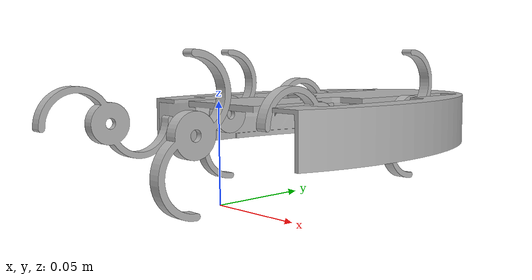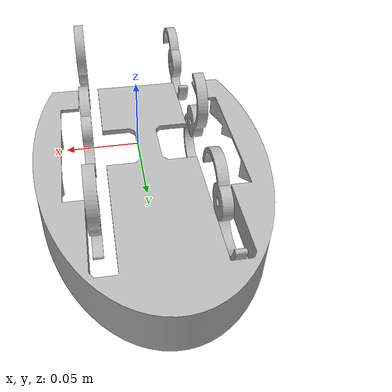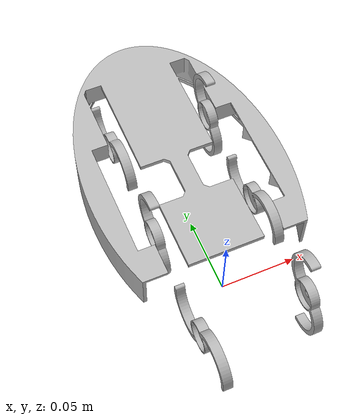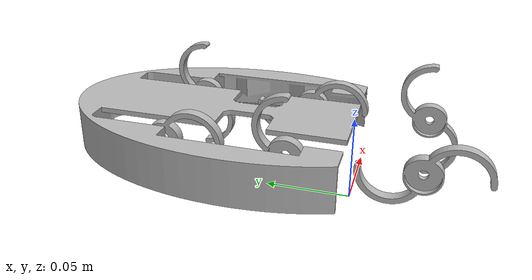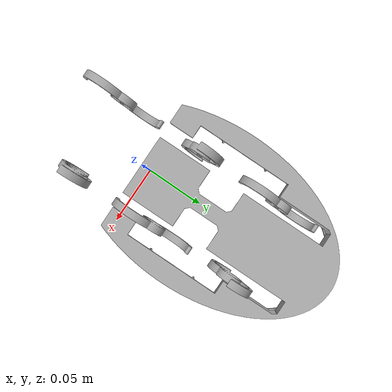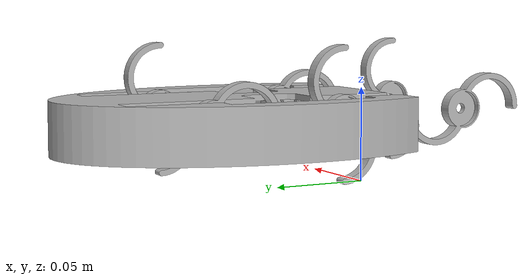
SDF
<?xml version='1.0'?>
<sdf version='1.4'>
<model name="mobile">
	<static>false</static>
	<link name='body'>
		<pose>0 0 0.05 0 0 0</pose>
		<collision name='collision'>
			<geometry>
				<mesh><uri>file://top.dae</uri></mesh>
			</geometry>
		</collision>

		<visual name='visual'>
			<geometry>
				<mesh><uri>file://top.dae</uri></mesh>
			</geometry>
		</visual>
	</link>

	<link name='left_leg_b'>
		<pose>-0.03 -0.04 0.04 1.570796 3.14159 0</pose>
		<collision name='left_leg_b_collision'>
			<geometry>
				<mesh><uri>file://leftleg.dae</uri></mesh>
			</geometry>
		</collision>

		<visual name='left_leg_b_visual'>
			<geometry>
				<mesh><uri>file://leftleg.dae</uri></mesh>
			</geometry>
		</visual>
	</link>

	<link name='right_leg_b'>
		<pose>0.037 -0.04 0.04 0 3.14159 0</pose>
		<collision name='right_leg_b_collision'>
			<geometry>
				<mesh><uri>file://leftleg.dae</uri></mesh>
			</geometry>
		</collision>

		<visual name='right_leg_b_visual'>
			<geometry>
				<mesh><uri>file://leftleg.dae</uri></mesh>
			</geometry>
		</visual>
	</link>

	<link name='left_leg_m'>
		<pose>-0.03 0.031 0.04 0 3.14159 0</pose>
		<collision name='left_leg_m_collision'>
			<geometry>
				<mesh><uri>file://leftleg.dae</uri></mesh>
			</geometry>
		</collision>

		<visual name='left_leg_m_visual'>
			<geometry>
				<mesh><uri>file://leftleg.dae</uri></mesh>
			</geometry>
		</visual>
	</link>

	<link name='right_leg_m'>
		<pose>0.037 0.031 0.04 1.570796 3.14159 0</pose>
		<collision name='right_leg_b_collision'>
			<geometry>
				<mesh><uri>file://leftleg.dae</uri></mesh>
			</geometry>
		</collision>

		<visual name='right_leg_m_visual'>
			<geometry>
				<mesh><uri>file://leftleg.dae</uri></mesh>
			</geometry>
		</visual>
	</link>

	<link name='left_leg_f'>
		<pose>-0.03 0.101 0.04 1.570796 3.14159 0</pose>
		<collision name='left_leg_f_collision'>
			<geometry>
				<mesh><uri>file://leftleg.dae</uri></mesh>
			</geometry>
		</collision>

		<visual name='left_leg_f_visual'>
			<geometry>
				<mesh><uri>file://leftleg.dae</uri></mesh>
			</geometry>
		</visual>
	</link>

	<link name='right_leg_f'>
		<pose>0.037 0.101 0.04 0 3.14159 0</pose>
		<collision name='right_leg_f_collision'>
			<geometry>
				<mesh><uri>file://leftleg.dae</uri></mesh>
			</geometry>
		</collision>

		<visual name='right_leg_f_visual'>
			<geometry>
				<mesh><uri>file://leftleg.dae</uri></mesh>
			</geometry>
		</visual>
	</link>
	<joint type="revolute" name="left_b">
		<pose>0 0 0 0 0 0</pose>
		<child>left_leg_b</child>
		<parent>body</parent>
		<axis><xyz>1 0 0</xyz></axis>
	</joint>

	<joint type="revolute" name="left_m">
		<pose>0 0 0 0 0 0</pose>
		<child>left_leg_m</child>
		<parent>body</parent>
		<axis><xyz>1 0 0</xyz></axis>
	</joint>

	<joint type="revolute" name="left_f">
		<pose>0 0 0 0 0 0</pose>
		<child>left_leg_f</child>
		<parent>body</parent>
		<axis><xyz>1 0 0</xyz></axis>
	</joint>

	<joint type="revolute" name="right_b">
		<pose>0 0 0 0 0 0</pose>
		<child>right_leg_b</child>
		<parent>body</parent>
		<axis><xyz>1 0 0</xyz></axis>
	</joint>

	<joint type="revolute" name="right_m">
		<pose>0 0 0 0 0 0</pose>
		<child>right_leg_m</child>
		<parent>body</parent>
		<axis><xyz>1 0 0</xyz></axis>
	</joint>

	<joint type="revolute" name="right_f">
		<pose>0 0 0 0 0 0</pose>
		<child>right_leg_f</child>
		<parent>body</parent>
		<axis><xyz>1 0 0</xyz></axis>
	</joint>
</model>
</sdf>
